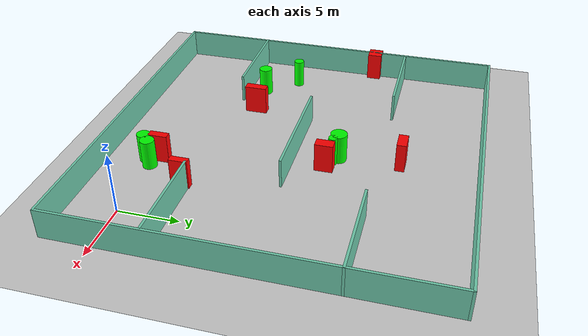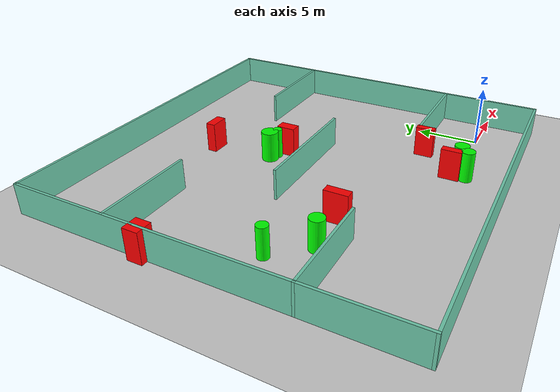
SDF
<sdf version="1.7">
 <world name="default">
  <light name="sun" type="directional">
   <pose>0 0 10 0 -0 0</pose>
   <diffuse>0.8 0.8 0.8 1</diffuse>
   <specular>0.2 0.2 0.2 1</specular>
   <attenuation>
    <range>1000</range>
    <constant>0.9</constant>
    <linear>0.01</linear>
    <quadratic>0.001</quadratic>
   </attenuation>
   <direction>-0.5 0.1 -0.9</direction>
   <spot><inner_angle>0</inner_angle><outer_angle>0</outer_angle><falloff>0</falloff></spot>
  </light>
  <model name="ground_plane">
   <static>1</static>
   <link name="link">
    <collision name="collision">
     <geometry><plane><normal>0 0 1</normal><size>100 100</size></plane></geometry>
     <surface>
      <contact><collide_bitmask>65535</collide_bitmask></contact>
      <friction><ode><mu>100</mu><mu2>50</mu2></ode></friction>
     </surface>
    </collision>
    <visual name="visual">
     <cast_shadows>0</cast_shadows>
     <geometry><plane><normal>0 0 1</normal><size>100 100</size></plane></geometry>
     <material>
      <script><uri>file://media/materials/scripts/gazebo.material</uri><name>Gazebo/Grey</name></script>
     </material>
    </visual>
   </link>
  </model>
  <gravity>0 0 -9.8</gravity>
  <magnetic_field>6e-06 2.3e-05 -4.2e-05</magnetic_field>
  <atmosphere type="adiabatic"/>
  <physics type="ode">
   <max_step_size>0.001</max_step_size>
   <real_time_factor>1</real_time_factor>
   <real_time_update_rate>1000</real_time_update_rate>
  </physics>
  <scene><ambient>0.4 0.4 0.4 1</ambient><background>0.7 0.7 0.7 1</background><shadows>1</shadows></scene>
  <spherical_coordinates>
   <surface_model>EARTH_WGS84</surface_model>
   <latitude_deg>0</latitude_deg>
   <longitude_deg>0</longitude_deg>
   <elevation>0</elevation>
   <heading_deg>0</heading_deg>
  </spherical_coordinates>
  <model name="my_base_walls">
   <link name="Wall_10">
    <collision name="Wall_10_Collision">
     <geometry><box><size>8.2 0.2 2.5</size></box></geometry>
     <pose>0 0 1.25 0 -0 0</pose>
    </collision>
    <visual name="Wall_10_Visual">
     <pose>0 0 1.25 0 -0 0</pose>
     <geometry><box><size>8.2 0.2 2.5</size></box></geometry>
     <material>
      <script><uri>file://media/materials/scripts/gazebo.material</uri><name>Gazebo/Grey</name></script>
      <ambient>0.435294 0.796078 0.67451 1</ambient>
     </material>
     <meta><layer>0</layer></meta>
    </visual>
    <pose>-11 -7 0 0 -0 0</pose>
   </link>
   <link name="Wall_12">
    <collision name="Wall_12_Collision">
     <geometry><box><size>8.2 0.2 2.5</size></box></geometry>
     <pose>0 0 1.25 0 -0 0</pose>
    </collision>
    <visual name="Wall_12_Visual">
     <pose>0 0 1.25 0 -0 0</pose>
     <geometry><box><size>8.2 0.2 2.5</size></box></geometry>
     <material>
      <script><uri>file://media/materials/scripts/gazebo.material</uri><name>Gazebo/Grey</name></script>
      <ambient>0.435294 0.796078 0.67451 1</ambient>
     </material>
     <meta><layer>0</layer></meta>
    </visual>
    <pose>-11 7 0 0 -0 0</pose>
   </link>
   <link name="Wall_14">
    <collision name="Wall_14_Collision">
     <geometry><box><size>8.2 0.2 2.5</size></box></geometry>
     <pose>0 0 1.25 0 -0 0</pose>
    </collision>
    <visual name="Wall_14_Visual">
     <pose>0 0 1.25 0 -0 0</pose>
     <geometry><box><size>8.2 0.2 2.5</size></box></geometry>
     <material>
      <script><uri>file://media/materials/scripts/gazebo.material</uri><name>Gazebo/Grey</name></script>
      <ambient>0.435294 0.796078 0.67451 1</ambient>
     </material>
     <meta><layer>0</layer></meta>
    </visual>
    <pose>11 7 0 0 -0 3.14159</pose>
   </link>
   <link name="Wall_16">
    <collision name="Wall_16_Collision">
     <geometry><box><size>10.2 0.2 2.5</size></box></geometry>
     <pose>0 0 1.25 0 -0 0</pose>
    </collision>
    <visual name="Wall_16_Visual">
     <pose>0 0 1.25 0 -0 0</pose>
     <geometry><box><size>10.2 0.2 2.5</size></box></geometry>
     <material>
      <script><uri>file://media/materials/scripts/gazebo.material</uri><name>Gazebo/Grey</name></script>
      <ambient>0.435294 0.796078 0.67451 1</ambient>
     </material>
     <meta><layer>0</layer></meta>
    </visual>
    <pose>0 0 0 0 -0 3.14159</pose>
   </link>
   <link name="Wall_2">
    <collision name="Wall_2_Collision">
     <geometry><box><size>30.2 0.2 2.5</size></box></geometry>
     <pose>0 0 1.25 0 -0 0</pose>
    </collision>
    <visual name="Wall_2_Visual">
     <pose>0 0 1.25 0 -0 0</pose>
     <geometry><box><size>30.2 0.2 2.5</size></box></geometry>
     <material>
      <script><uri>file://media/materials/scripts/gazebo.material</uri><name>Gazebo/Grey</name></script>
      <ambient>0.435294 0.796078 0.67451 1</ambient>
     </material>
     <meta><layer>0</layer></meta>
    </visual>
    <pose>0 -15 0 0 -0 3.14159</pose>
   </link>
   <link name="Wall_3">
    <collision name="Wall_3_Collision">
     <geometry><box><size>30.2 0.2 2.5</size></box></geometry>
     <pose>0 0 1.25 0 -0 0</pose>
    </collision>
    <visual name="Wall_3_Visual">
     <pose>0 0 1.25 0 -0 0</pose>
     <geometry><box><size>30.2 0.2 2.5</size></box></geometry>
     <material>
      <script><uri>file://media/materials/scripts/gazebo.material</uri><name>Gazebo/Grey</name></script>
      <ambient>0.435294 0.796078 0.67451 1</ambient>
     </material>
     <meta><layer>0</layer></meta>
    </visual>
    <pose>-15 0 0 0 -0 1.5708</pose>
   </link>
   <link name="Wall_4">
    <collision name="Wall_4_Collision">
     <geometry><box><size>30.2 0.2 2.5</size></box></geometry>
     <pose>0 0 1.25 0 -0 0</pose>
    </collision>
    <visual name="Wall_4_Visual">
     <pose>0 0 1.25 0 -0 0</pose>
     <geometry><box><size>30.2 0.2 2.5</size></box></geometry>
     <material>
      <script><uri>file://media/materials/scripts/gazebo.material</uri><name>Gazebo/Grey</name></script>
      <ambient>0.435294 0.796078 0.67451 1</ambient>
     </material>
     <meta><layer>0</layer></meta>
    </visual>
    <pose>0 15 0 0 -0 0</pose>
   </link>
   <link name="Wall_6">
    <collision name="Wall_6_Collision">
     <geometry><box><size>30.2 0.2 2.5</size></box></geometry>
     <pose>0 0 1.25 0 -0 0</pose>
    </collision>
    <visual name="Wall_6_Visual">
     <pose>0 0 1.25 0 -0 0</pose>
     <geometry><box><size>30.2 0.2 2.5</size></box></geometry>
     <material>
      <script><uri>file://media/materials/scripts/gazebo.material</uri><name>Gazebo/Grey</name></script>
      <ambient>0.435294 0.796078 0.67451 1</ambient>
     </material>
     <meta><layer>0</layer></meta>
    </visual>
    <pose>15 0 0 0 -0 1.5708</pose>
   </link>
   <link name="Wall_8">
    <collision name="Wall_8_Collision">
     <geometry><box><size>8.2 0.2 2.5</size></box></geometry>
     <pose>0 0 1.25 0 -0 0</pose>
    </collision>
    <visual name="Wall_8_Visual">
     <pose>0 0 1.25 0 -0 0</pose>
     <geometry><box><size>8.2 0.2 2.5</size></box></geometry>
     <material>
      <script><uri>file://media/materials/scripts/gazebo.material</uri><name>Gazebo/Grey</name></script>
      <ambient>0.435294 0.796078 0.67451 1</ambient>
     </material>
     <meta><layer>0</layer></meta>
    </visual>
    <pose>11 -7 0 0 -0 3.14159</pose>
   </link>
   <static>1</static>
   <pose>-11 11 0 0 -0 0</pose>
  </model>
  <model name="cylinder1">
   <static>1</static>
   <link name="link">
    <inertial>
     <mass>1</mass>
     <inertia><ixx>0.5</ixx><ixy>0</ixy><ixz>0</ixz><iyy>0.5</iyy><iyz>0</iyz><izz>1</izz></inertia>
    </inertial>
    <collision name="collision">
     <geometry><cylinder><radius>0.5957437711801339</radius><length>2.5</length></cylinder></geometry>
    </collision>
    <visual name="visual">
     <geometry><cylinder><radius>0.5957437711801339</radius><length>2.5</length></cylinder></geometry>
     <material>
      <ambient>0 1 0 1</ambient>
      <diffuse>0 1 0 1</diffuse>
      <specular>0.1 0.1 0.1 1</specular>
      <emissive>0 0 0 0</emissive>
     </material>
    </visual>
   </link>
   <pose>-5.974523779937318 -0.07227477948332339 1.25 0 0 0</pose>
  </model>
  <model name="cylinder2">
   <static>1</static>
   <link name="link">
    <inertial>
     <mass>1</mass>
     <inertia><ixx>0.5</ixx><ixy>0</ixy><ixz>0</ixz><iyy>0.5</iyy><iyz>0</iyz><izz>1</izz></inertia>
    </inertial>
    <collision name="collision">
     <geometry><cylinder><radius>0.5453273124029516</radius><length>2.5</length></cylinder></geometry>
    </collision>
    <visual name="visual">
     <geometry><cylinder><radius>0.5453273124029516</radius><length>2.5</length></cylinder></geometry>
     <material>
      <ambient>0 1 0 1</ambient>
      <diffuse>0 1 0 1</diffuse>
      <specular>0.1 0.1 0.1 1</specular>
      <emissive>0 0 0 0</emissive>
     </material>
    </visual>
   </link>
   <pose>-6.712696593286868 -0.73013505476426 1.25 0 0 0</pose>
  </model>
  <model name="cylinder3">
   <static>1</static>
   <link name="link">
    <inertial>
     <mass>1</mass>
     <inertia><ixx>0.5</ixx><ixy>0</ixy><ixz>0</ixz><iyy>0.5</iyy><iyz>0</iyz><izz>1</izz></inertia>
    </inertial>
    <collision name="collision">
     <geometry><cylinder><radius>0.4472526082174749</radius><length>2.5</length></cylinder></geometry>
    </collision>
    <visual name="visual">
     <geometry><cylinder><radius>0.4472526082174749</radius><length>2.5</length></cylinder></geometry>
     <material>
      <ambient>0 1 0 1</ambient>
      <diffuse>0 1 0 1</diffuse>
      <specular>0.1 0.1 0.1 1</specular>
      <emissive>0 0 0 0</emissive>
     </material>
    </visual>
   </link>
   <pose>-22.307875956348283 8.260203325107803 1.25 0 0 0</pose>
  </model>
  <model name="cylinder4">
   <static>1</static>
   <link name="link">
    <inertial>
     <mass>1</mass>
     <inertia><ixx>0.5</ixx><ixy>0</ixy><ixz>0</ixz><iyy>0.5</iyy><iyz>0</iyz><izz>1</izz></inertia>
    </inertial>
    <collision name="collision">
     <geometry><cylinder><radius>0.3719249229251584</radius><length>2.5</length></cylinder></geometry>
    </collision>
    <visual name="visual">
     <geometry><cylinder><radius>0.3719249229251584</radius><length>2.5</length></cylinder></geometry>
     <material>
      <ambient>0 1 0 1</ambient>
      <diffuse>0 1 0 1</diffuse>
      <specular>0.1 0.1 0.1 1</specular>
      <emissive>0 0 0 0</emissive>
     </material>
    </visual>
   </link>
   <pose>-10.072900016156614 14.240521706471114 1.25 0 0 0</pose>
  </model>
  <model name="cylinder5">
   <static>1</static>
   <link name="link">
    <inertial>
     <mass>1</mass>
     <inertia><ixx>0.5</ixx><ixy>0</ixy><ixz>0</ixz><iyy>0.5</iyy><iyz>0</iyz><izz>1</izz></inertia>
    </inertial>
    <collision name="collision">
     <geometry><cylinder><radius>0.5839393457393027</radius><length>2.5</length></cylinder></geometry>
    </collision>
    <visual name="visual">
     <geometry><cylinder><radius>0.5839393457393027</radius><length>2.5</length></cylinder></geometry>
     <material>
      <ambient>0 1 0 1</ambient>
      <diffuse>0 1 0 1</diffuse>
      <specular>0.1 0.1 0.1 1</specular>
      <emissive>0 0 0 0</emissive>
     </material>
    </visual>
   </link>
   <pose>-20.01825545825373 5.594507340910884 1.25 0 0 0</pose>
  </model>
  <model name="cylinder6">
   <static>1</static>
   <link name="link">
    <inertial>
     <mass>1</mass>
     <inertia><ixx>0.5</ixx><ixy>0</ixy><ixz>0</ixz><iyy>0.5</iyy><iyz>0</iyz><izz>1</izz></inertia>
    </inertial>
    <collision name="collision">
     <geometry><cylinder><radius>0.6909000257913812</radius><length>2.5</length></cylinder></geometry>
    </collision>
    <visual name="visual">
     <geometry><cylinder><radius>0.6909000257913812</radius><length>2.5</length></cylinder></geometry>
     <material>
      <ambient>0 1 0 1</ambient>
      <diffuse>0 1 0 1</diffuse>
      <specular>0.1 0.1 0.1 1</specular>
      <emissive>0 0 0 0</emissive>
     </material>
    </visual>
   </link>
   <pose>-10.744809086161293 14.592409508422993 1.25 0 0 0</pose>
  </model>
  <model name="box1">
   <static>1</static>
   <link name="link">
    <inertial>
     <mass>1</mass>
     <inertia><ixx>0.083</ixx><ixy>0</ixy><ixz>0</ixz><iyy>0.083</iyy><iyz>0</iyz><izz>0.083</izz></inertia>
    </inertial>
    <collision name="collision">
     <geometry><box><size>0.6319278154230581 1.617711964636672 2.5</size></box></geometry>
    </collision>
    <visual name="visual">
     <geometry><box><size>0.6319278154230581 1.617711964636672 2.5</size></box></geometry>
     <material>
      <ambient>1 0 0 1</ambient>
      <diffuse>1 0 0 1</diffuse>
      <specular>0.1 0.1 0.1 1</specular>
      <emissive>0 0 0 0</emissive>
     </material>
    </visual>
    <sensor name="my_contact" type="contact">
     <contact><collision>box_collision</collision><topic>__default_topic__</topic></contact>
    </sensor>
   </link>
   <pose>-7.004129708962676 0.4674592650632361 1.25 0 0 0</pose>
  </model>
  <model name="box2">
   <static>1</static>
   <link name="link">
    <inertial>
     <mass>1</mass>
     <inertia><ixx>0.083</ixx><ixy>0</ixy><ixz>0</ixz><iyy>0.083</iyy><iyz>0</iyz><izz>0.083</izz></inertia>
    </inertial>
    <collision name="collision">
     <geometry><box><size>1.2982133948852979 1.2410921409818063 2.5</size></box></geometry>
    </collision>
    <visual name="visual">
     <geometry><box><size>1.2982133948852979 1.2410921409818063 2.5</size></box></geometry>
     <material>
      <ambient>1 0 0 1</ambient>
      <diffuse>1 0 0 1</diffuse>
      <specular>0.1 0.1 0.1 1</specular>
      <emissive>0 0 0 0</emissive>
     </material>
    </visual>
    <sensor name="my_contact" type="contact">
     <contact><collision>box_collision</collision><topic>__default_topic__</topic></contact>
    </sensor>
   </link>
   <pose>-25.937821446241163 15.112388206878563 1.25 0 0 0</pose>
  </model>
  <model name="box3">
   <static>1</static>
   <link name="link">
    <inertial>
     <mass>1</mass>
     <inertia><ixx>0.083</ixx><ixy>0</ixy><ixz>0</ixz><iyy>0.083</iyy><iyz>0</iyz><izz>0.083</izz></inertia>
    </inertial>
    <collision name="collision">
     <geometry><box><size>0.7253135909128912 1.9046410549344173 2.5</size></box></geometry>
    </collision>
    <visual name="visual">
     <geometry><box><size>0.7253135909128912 1.9046410549344173 2.5</size></box></geometry>
     <material>
      <ambient>1 0 0 1</ambient>
      <diffuse>1 0 0 1</diffuse>
      <specular>0.1 0.1 0.1 1</specular>
      <emissive>0 0 0 0</emissive>
     </material>
    </visual>
    <sensor name="my_contact" type="contact">
     <contact><collision>box_collision</collision><topic>__default_topic__</topic></contact>
    </sensor>
   </link>
   <pose>-16.535055571290766 5.773844410161788 1.25 0 0 0</pose>
  </model>
  <model name="box4">
   <static>1</static>
   <link name="link">
    <inertial>
     <mass>1</mass>
     <inertia><ixx>0.083</ixx><ixy>0</ixy><ixz>0</ixz><iyy>0.083</iyy><iyz>0</iyz><izz>0.083</izz></inertia>
    </inertial>
    <collision name="collision">
     <geometry><box><size>0.5853467165875796 1.5243859056579925 2.5</size></box></geometry>
    </collision>
    <visual name="visual">
     <geometry><box><size>0.5853467165875796 1.5243859056579925 2.5</size></box></geometry>
     <material>
      <ambient>1 0 0 1</ambient>
      <diffuse>1 0 0 1</diffuse>
      <specular>0.1 0.1 0.1 1</specular>
      <emissive>0 0 0 0</emissive>
     </material>
    </visual>
    <sensor name="my_contact" type="contact">
     <contact><collision>box_collision</collision><topic>__default_topic__</topic></contact>
    </sensor>
   </link>
   <pose>-4.149925122133711 3.4283890744415437 1.25 0 0 0</pose>
  </model>
  <model name="box5">
   <static>1</static>
   <link name="link">
    <inertial>
     <mass>1</mass>
     <inertia><ixx>0.083</ixx><ixy>0</ixy><ixz>0</ixz><iyy>0.083</iyy><iyz>0</iyz><izz>0.083</izz></inertia>
    </inertial>
    <collision name="collision">
     <geometry><box><size>1.6064438243475203 0.7848577281721391 2.5</size></box></geometry>
    </collision>
    <visual name="visual">
     <geometry><box><size>1.6064438243475203 0.7848577281721391 2.5</size></box></geometry>
     <material>
      <ambient>1 0 0 1</ambient>
      <diffuse>1 0 0 1</diffuse>
      <specular>0.1 0.1 0.1 1</specular>
      <emissive>0 0 0 0</emissive>
     </material>
    </visual>
    <sensor name="my_contact" type="contact">
     <contact><collision>box_collision</collision><topic>__default_topic__</topic></contact>
    </sensor>
   </link>
   <pose>-11.098424659546112 19.709315034933304 1.25 0 0 0</pose>
  </model>
  <model name="box6">
   <static>1</static>
   <link name="link">
    <inertial>
     <mass>1</mass>
     <inertia><ixx>0.083</ixx><ixy>0</ixy><ixz>0</ixz><iyy>0.083</iyy><iyz>0</iyz><izz>0.083</izz></inertia>
    </inertial>
    <collision name="collision">
     <geometry><box><size>0.8861858026613888 1.5144575170364023 2.5</size></box></geometry>
    </collision>
    <visual name="visual">
     <geometry><box><size>0.8861858026613888 1.5144575170364023 2.5</size></box></geometry>
     <material>
      <ambient>1 0 0 1</ambient>
      <diffuse>1 0 0 1</diffuse>
      <specular>0.1 0.1 0.1 1</specular>
      <emissive>0 0 0 0</emissive>
     </material>
    </visual>
    <sensor name="my_contact" type="contact">
     <contact><collision>box_collision</collision><topic>__default_topic__</topic></contact>
    </sensor>
   </link>
   <pose>-9.160720070554891 13.765554661134214 1.25 0 0 0</pose>
  </model>
 </world>
</sdf>
